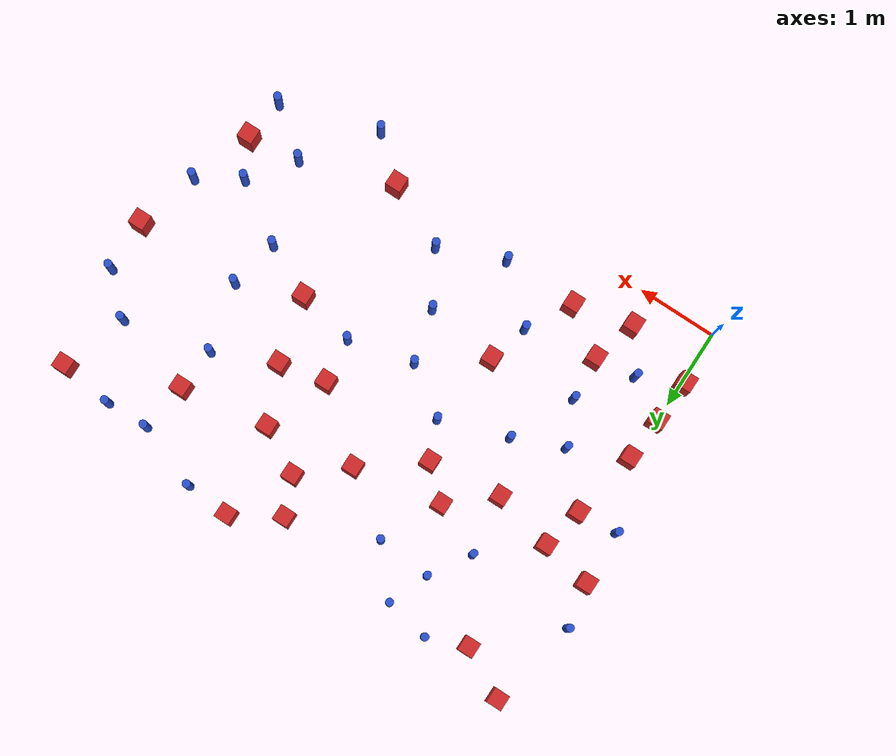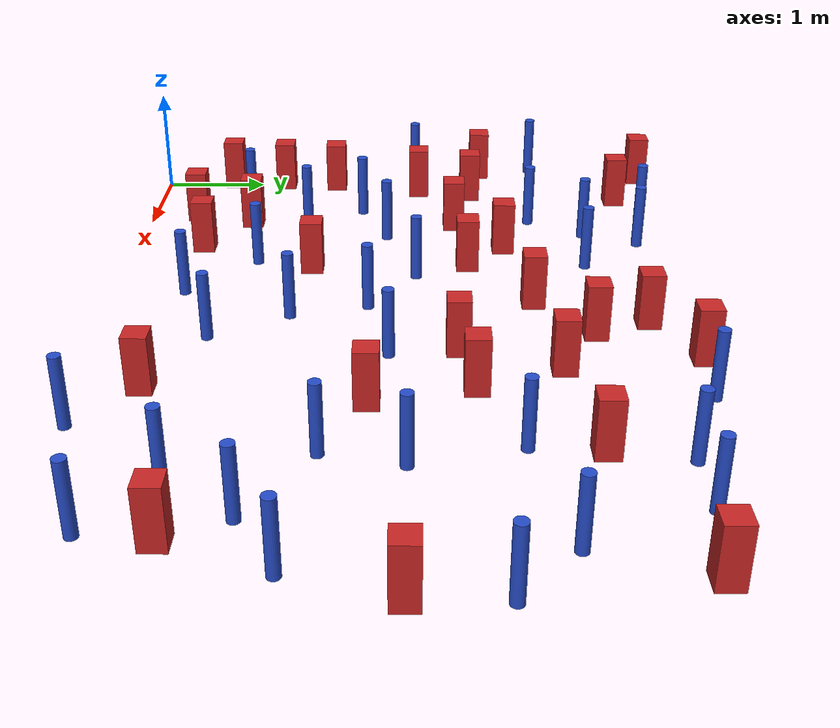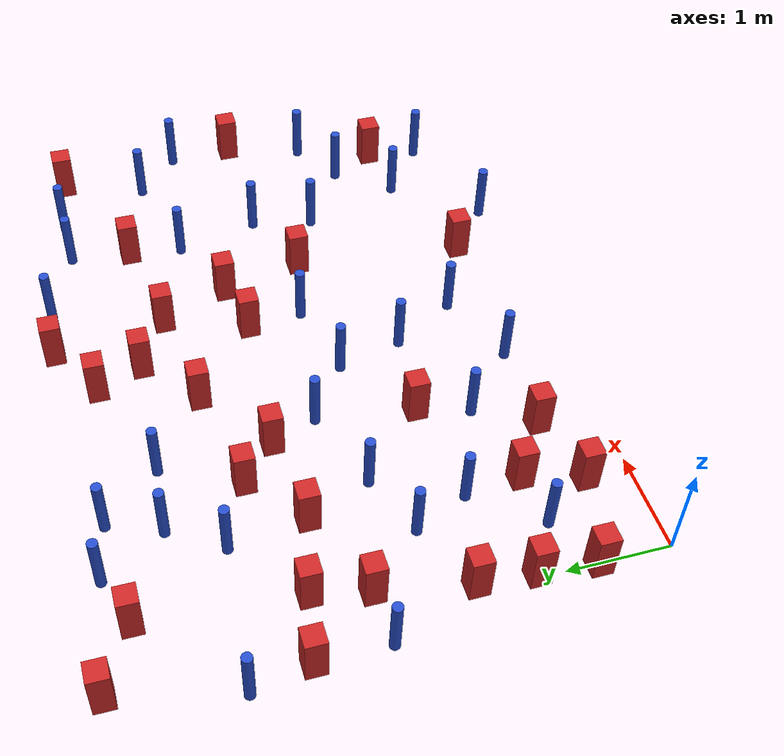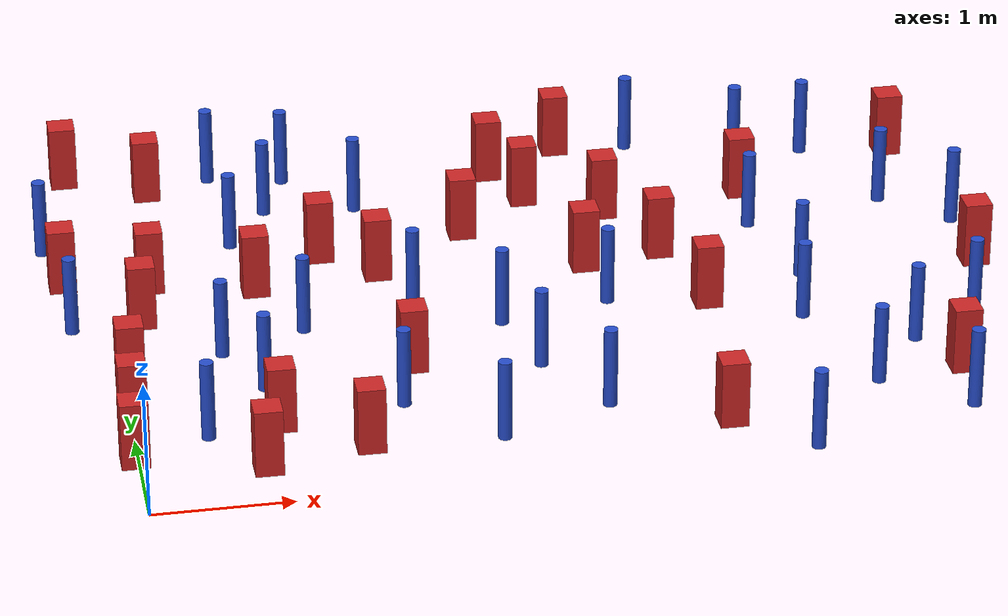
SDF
<sdf version="1.6">
 <model name="dense_7">
  <model name="square_post_obstacle11">
   <static>true</static>
   <pose>2.00786837578 3.1188918921 1.91545236811e-07 -7.35059704564e-06 1.12565212e-07 2.39332434364e-05</pose>
   <link name="link">
    <pose>0 0 0.25 0 -0 0</pose>
    <inertial>
     <mass>100</mass>
     <inertia>
      <ixx>0.166667</ixx>
      <ixy>0</ixy>
      <ixz>0</ixz>
      <iyy>0.166667</iyy>
      <iyz>0</iyz>
      <izz>0.166667</izz>
     </inertia>
    </inertial>
    <collision name="collision"><geometry><box><size>.2 .2 .5</size></box></geometry></collision>
    <visual name="visual">
     <geometry><box><size>.2 .2 .5</size></box></geometry>
     <material>
      <script><name>Gazebo/Red</name><uri>file://media/materials/scripts/gazebo.material</uri></script>
     </material>
    </visual>
   </link>
  </model>
  <model name="square_post_obstacle13">
   <static>true</static>
   <pose>0.330037371292 3.20440158988 1.91545236811e-07 -7.35059704564e-06 1.12565212e-07 2.39332434364e-05</pose>
   <link name="link">
    <pose>0 0 0.25 0 -0 0</pose>
    <inertial>
     <mass>100</mass>
     <inertia>
      <ixx>0.166667</ixx>
      <ixy>0</ixy>
      <ixz>0</ixz>
      <iyy>0.166667</iyy>
      <iyz>0</iyz>
      <izz>0.166667</izz>
     </inertia>
    </inertial>
    <collision name="collision"><geometry><box><size>.2 .2 .5</size></box></geometry></collision>
    <visual name="visual">
     <geometry><box><size>.2 .2 .5</size></box></geometry>
     <material>
      <script><name>Gazebo/Red</name><uri>file://media/materials/scripts/gazebo.material</uri></script>
     </material>
    </visual>
   </link>
  </model>
  <model name="square_post_obstacle17">
   <static>true</static>
   <pose>0.0158178498044 1.2604832385 1.91545236811e-07 -7.35059704564e-06 1.12565212e-07 2.39332434364e-05</pose>
   <link name="link">
    <pose>0 0 0.25 0 -0 0</pose>
    <inertial>
     <mass>100</mass>
     <inertia>
      <ixx>0.166667</ixx>
      <ixy>0</ixy>
      <ixz>0</ixz>
      <iyy>0.166667</iyy>
      <iyz>0</iyz>
      <izz>0.166667</izz>
     </inertia>
    </inertial>
    <collision name="collision"><geometry><box><size>.2 .2 .5</size></box></geometry></collision>
    <visual name="visual">
     <geometry><box><size>.2 .2 .5</size></box></geometry>
     <material>
      <script><name>Gazebo/Red</name><uri>file://media/materials/scripts/gazebo.material</uri></script>
     </material>
    </visual>
   </link>
  </model>
  <model name="pole_obstacle10">
   <static>true</static>
   <pose>0.944333623494 4.88567768252 7.38925637345e-09 -8.471706928e-08 1.24976765086e-08 -1.74513093015e-07</pose>
   <link name="link">
    <pose>0 0 0.3 0 -0 0</pose>
    <inertial>
     <mass>1</mass>
     <inertia><ixx>0.145833</ixx><ixy>0</ixy><ixz>0</ixz><iyy>0.145833</iyy><iyz>0</iyz><izz>0.125</izz></inertia>
    </inertial>
    <collision name="collision">
     <geometry><cylinder><radius>0.05</radius><length>.6</length></cylinder></geometry>
    </collision>
    <visual name="visual">
     <geometry><cylinder><radius>0.05</radius><length>.6</length></cylinder></geometry>
     <material>
      <script><name>Gazebo/Blue</name><uri>file://media/materials/scripts/gazebo.material</uri></script>
     </material>
    </visual>
   </link>
  </model>
  <model name="pole_obstacle13">
   <static>true</static>
   <pose>6.21061196877 1.79302768578 7.38925637345e-09 -8.471706928e-08 1.24976765134e-08 -1.74513093015e-07</pose>
   <link name="link">
    <pose>0 0 0.3 0 -0 0</pose>
    <inertial>
     <mass>1</mass>
     <inertia><ixx>0.145833</ixx><ixy>0</ixy><ixz>0</ixz><iyy>0.145833</iyy><iyz>0</iyz><izz>0.125</izz></inertia>
    </inertial>
    <collision name="collision">
     <geometry><cylinder><radius>0.05</radius><length>.6</length></cylinder></geometry>
    </collision>
    <visual name="visual">
     <geometry><cylinder><radius>0.05</radius><length>.6</length></cylinder></geometry>
     <material>
      <script><name>Gazebo/Blue</name><uri>file://media/materials/scripts/gazebo.material</uri></script>
     </material>
    </visual>
   </link>
  </model>
  <model name="pole_obstacle23">
   <static>true</static>
   <pose>2.79433723792 2.23426225955 7.38925637345e-09 -8.47170692798e-08 1.24976764939e-08 -1.74513093025e-07</pose>
   <link name="link">
    <pose>0 0 0.3 0 -0 0</pose>
    <inertial>
     <mass>1</mass>
     <inertia><ixx>0.145833</ixx><ixy>0</ixy><ixz>0</ixz><iyy>0.145833</iyy><iyz>0</iyz><izz>0.125</izz></inertia>
    </inertial>
    <collision name="collision">
     <geometry><cylinder><radius>0.05</radius><length>.6</length></cylinder></geometry>
    </collision>
    <visual name="visual">
     <geometry><cylinder><radius>0.05</radius><length>.6</length></cylinder></geometry>
     <material>
      <script><name>Gazebo/Blue</name><uri>file://media/materials/scripts/gazebo.material</uri></script>
     </material>
    </visual>
   </link>
  </model>
  <model name="square_post_obstacle37">
   <static>true</static>
   <pose>3.67285831128 4.93986969729 1.91545236811e-07 -7.35059704564e-06 1.12565212e-07 2.39332434364e-05</pose>
   <link name="link">
    <pose>0 0 0.25 0 -0 0</pose>
    <inertial>
     <mass>100</mass>
     <inertia>
      <ixx>0.166667</ixx>
      <ixy>0</ixy>
      <ixz>0</ixz>
      <iyy>0.166667</iyy>
      <iyz>0</iyz>
      <izz>0.166667</izz>
     </inertia>
    </inertial>
    <collision name="collision"><geometry><box><size>.2 .2 .5</size></box></geometry></collision>
    <visual name="visual">
     <geometry><box><size>.2 .2 .5</size></box></geometry>
     <material>
      <script><name>Gazebo/Red</name><uri>file://media/materials/scripts/gazebo.material</uri></script>
     </material>
    </visual>
   </link>
  </model>
  <model name="square_post_obstacle38">
   <static>true</static>
   <pose>2.73106794108 3.6618890365 1.91545236811e-07 -7.35059704564e-06 1.12565212e-07 2.39332434364e-05</pose>
   <link name="link">
    <pose>0 0 0.25 0 -0 0</pose>
    <inertial>
     <mass>100</mass>
     <inertia>
      <ixx>0.166667</ixx>
      <ixy>0</ixy>
      <ixz>0</ixz>
      <iyy>0.166667</iyy>
      <iyz>0</iyz>
      <izz>0.166667</izz>
     </inertia>
    </inertial>
    <collision name="collision"><geometry><box><size>.2 .2 .5</size></box></geometry></collision>
    <visual name="visual">
     <geometry><box><size>.2 .2 .5</size></box></geometry>
     <material>
      <script><name>Gazebo/Red</name><uri>file://media/materials/scripts/gazebo.material</uri></script>
     </material>
    </visual>
   </link>
  </model>
  <model name="square_post_obstacle39">
   <static>true</static>
   <pose>1.59457001784 0.632423302085 1.91545236811e-07 -7.35059704564e-06 1.12565212e-07 2.39332434364e-05</pose>
   <link name="link">
    <pose>0 0 0.25 0 -0 0</pose>
    <inertial>
     <mass>100</mass>
     <inertia>
      <ixx>0.166667</ixx>
      <ixy>0</ixy>
      <ixz>0</ixz>
      <iyy>0.166667</iyy>
      <iyz>0</iyz>
      <izz>0.166667</izz>
     </inertia>
    </inertial>
    <collision name="collision"><geometry><box><size>.2 .2 .5</size></box></geometry></collision>
    <visual name="visual">
     <geometry><box><size>.2 .2 .5</size></box></geometry>
     <material>
      <script><name>Gazebo/Red</name><uri>file://media/materials/scripts/gazebo.material</uri></script>
     </material>
    </visual>
   </link>
  </model>
  <model name="square_post_obstacle42">
   <static>true</static>
   <pose>3.84130354728 3.80793147247 1.91545236811e-07 -7.35059704564e-06 1.12565212e-07 2.39332434364e-05</pose>
   <link name="link">
    <pose>0 0 0.25 0 -0 0</pose>
    <inertial>
     <mass>100</mass>
     <inertia>
      <ixx>0.166667</ixx>
      <ixy>0</ixy>
      <ixz>0</ixz>
      <iyy>0.166667</iyy>
      <iyz>0</iyz>
      <izz>0.166667</izz>
     </inertia>
    </inertial>
    <collision name="collision"><geometry><box><size>.2 .2 .5</size></box></geometry></collision>
    <visual name="visual">
     <geometry><box><size>.2 .2 .5</size></box></geometry>
     <material>
      <script><name>Gazebo/Red</name><uri>file://media/materials/scripts/gazebo.material</uri></script>
     </material>
    </visual>
   </link>
  </model>
  <model name="pole_obstacle47">
   <static>true</static>
   <pose>2.53132989086 0.604674307064 7.38925637345e-09 -8.471706928e-08 1.24976765177e-08 -1.74513093012e-07</pose>
   <link name="link">
    <pose>0 0 0.3 0 -0 0</pose>
    <inertial>
     <mass>1</mass>
     <inertia><ixx>0.145833</ixx><ixy>0</ixy><ixz>0</ixz><iyy>0.145833</iyy><iyz>0</iyz><izz>0.125</izz></inertia>
    </inertial>
    <collision name="collision">
     <geometry><cylinder><radius>0.05</radius><length>.6</length></cylinder></geometry>
    </collision>
    <visual name="visual">
     <geometry><cylinder><radius>0.05</radius><length>.6</length></cylinder></geometry>
     <material>
      <script><name>Gazebo/Blue</name><uri>file://media/materials/scripts/gazebo.material</uri></script>
     </material>
    </visual>
   </link>
  </model>
  <model name="square_post_obstacle50">
   <static>true</static>
   <pose>6.42778259608 2.5835620169 1.91545236811e-07 -7.35059704564e-06 1.12565212e-07 2.39332434364e-05</pose>
   <link name="link">
    <pose>0 0 0.25 0 -0 0</pose>
    <inertial>
     <mass>100</mass>
     <inertia>
      <ixx>0.166667</ixx>
      <ixy>0</ixy>
      <ixz>0</ixz>
      <iyy>0.166667</iyy>
      <iyz>0</iyz>
      <izz>0.166667</izz>
     </inertia>
    </inertial>
    <collision name="collision"><geometry><box><size>.2 .2 .5</size></box></geometry></collision>
    <visual name="visual">
     <geometry><box><size>.2 .2 .5</size></box></geometry>
     <material>
      <script><name>Gazebo/Red</name><uri>file://media/materials/scripts/gazebo.material</uri></script>
     </material>
    </visual>
   </link>
  </model>
  <model name="pole_obstacle51">
   <static>true</static>
   <pose>4.63802981212 0.105509506955 7.38925637345e-09 -8.47170692799e-08 1.24976765066e-08 -1.74513093016e-07</pose>
   <link name="link">
    <pose>0 0 0.3 0 -0 0</pose>
    <inertial>
     <mass>1</mass>
     <inertia><ixx>0.145833</ixx><ixy>0</ixy><ixz>0</ixz><iyy>0.145833</iyy><iyz>0</iyz><izz>0.125</izz></inertia>
    </inertial>
    <collision name="collision">
     <geometry><cylinder><radius>0.05</radius><length>.6</length></cylinder></geometry>
    </collision>
    <visual name="visual">
     <geometry><cylinder><radius>0.05</radius><length>.6</length></cylinder></geometry>
     <material>
      <script><name>Gazebo/Blue</name><uri>file://media/materials/scripts/gazebo.material</uri></script>
     </material>
    </visual>
   </link>
  </model>
  <model name="square_post_obstacle54">
   <static>true</static>
   <pose>4.12608236426 0.55460140565 1.91545236811e-07 -7.35059704564e-06 1.12565212e-07 2.39332434364e-05</pose>
   <link name="link">
    <pose>0 0 0.25 0 -0 0</pose>
    <inertial>
     <mass>100</mass>
     <inertia>
      <ixx>0.166667</ixx>
      <ixy>0</ixy>
      <ixz>0</ixz>
      <iyy>0.166667</iyy>
      <iyz>0</iyz>
      <izz>0.166667</izz>
     </inertia>
    </inertial>
    <collision name="collision"><geometry><box><size>.2 .2 .5</size></box></geometry></collision>
    <visual name="visual">
     <geometry><box><size>.2 .2 .5</size></box></geometry>
     <material>
      <script><name>Gazebo/Red</name><uri>file://media/materials/scripts/gazebo.material</uri></script>
     </material>
    </visual>
   </link>
  </model>
  <model name="square_post_obstacle69">
   <static>true</static>
   <pose>0.863787840658 0.459194700348 1.91545236811e-07 -7.35059704564e-06 1.12565212e-07 2.39332434364e-05</pose>
   <link name="link">
    <pose>0 0 0.25 0 -0 0</pose>
    <inertial>
     <mass>100</mass>
     <inertia>
      <ixx>0.166667</ixx>
      <ixy>0</ixy>
      <ixz>0</ixz>
      <iyy>0.166667</iyy>
      <iyz>0</iyz>
      <izz>0.166667</izz>
     </inertia>
    </inertial>
    <collision name="collision"><geometry><box><size>.2 .2 .5</size></box></geometry></collision>
    <visual name="visual">
     <geometry><box><size>.2 .2 .5</size></box></geometry>
     <material>
      <script><name>Gazebo/Red</name><uri>file://media/materials/scripts/gazebo.material</uri></script>
     </material>
    </visual>
   </link>
  </model>
  <model name="pole_obstacle84">
   <static>true</static>
   <pose>5.97501203008 3.67319659147 7.38925637345e-09 -8.47170692798e-08 1.24976764937e-08 -1.74513093023e-07</pose>
   <link name="link">
    <pose>0 0 0.3 0 -0 0</pose>
    <inertial>
     <mass>1</mass>
     <inertia><ixx>0.145833</ixx><ixy>0</ixy><ixz>0</ixz><iyy>0.145833</iyy><iyz>0</iyz><izz>0.125</izz></inertia>
    </inertial>
    <collision name="collision">
     <geometry><cylinder><radius>0.05</radius><length>.6</length></cylinder></geometry>
    </collision>
    <visual name="visual">
     <geometry><cylinder><radius>0.05</radius><length>.6</length></cylinder></geometry>
     <material>
      <script><name>Gazebo/Blue</name><uri>file://media/materials/scripts/gazebo.material</uri></script>
     </material>
    </visual>
   </link>
  </model>
  <model name="pole_obstacle85">
   <static>true</static>
   <pose>3.612017693 2.42757508268 7.38925637345e-09 -8.47170692798e-08 1.24976764939e-08 -1.74513093025e-07</pose>
   <link name="link">
    <pose>0 0 0.3 0 -0 0</pose>
    <inertial>
     <mass>1</mass>
     <inertia><ixx>0.145833</ixx><ixy>0</ixy><ixz>0</ixz><iyy>0.145833</iyy><iyz>0</iyz><izz>0.125</izz></inertia>
    </inertial>
    <collision name="collision">
     <geometry><cylinder><radius>0.05</radius><length>.6</length></cylinder></geometry>
    </collision>
    <visual name="visual">
     <geometry><cylinder><radius>0.05</radius><length>.6</length></cylinder></geometry>
     <material>
      <script><name>Gazebo/Blue</name><uri>file://media/materials/scripts/gazebo.material</uri></script>
     </material>
    </visual>
   </link>
  </model>
  <model name="pole_obstacle86">
   <static>true</static>
   <pose>4.8983027293 3.43261936632 7.38925637345e-09 -8.47170692798e-08 1.24976764937e-08 -1.74513093023e-07</pose>
   <link name="link">
    <pose>0 0 0.3 0 -0 0</pose>
    <inertial>
     <mass>1</mass>
     <inertia><ixx>0.145833</ixx><ixy>0</ixy><ixz>0</ixz><iyy>0.145833</iyy><iyz>0</iyz><izz>0.125</izz></inertia>
    </inertial>
    <collision name="collision">
     <geometry><cylinder><radius>0.05</radius><length>.6</length></cylinder></geometry>
    </collision>
    <visual name="visual">
     <geometry><cylinder><radius>0.05</radius><length>.6</length></cylinder></geometry>
     <material>
      <script><name>Gazebo/Blue</name><uri>file://media/materials/scripts/gazebo.material</uri></script>
     </material>
    </visual>
   </link>
  </model>
  <model name="square_post_obstacle86">
   <static>true</static>
   <pose>4.32679421276 2.2790116075 1.91545236811e-07 -7.35059704564e-06 1.12565212e-07 2.39332434364e-05</pose>
   <link name="link">
    <pose>0 0 0.25 0 -0 0</pose>
    <inertial>
     <mass>100</mass>
     <inertia>
      <ixx>0.166667</ixx>
      <ixy>0</ixy>
      <ixz>0</ixz>
      <iyy>0.166667</iyy>
      <iyz>0</iyz>
      <izz>0.166667</izz>
     </inertia>
    </inertial>
    <collision name="collision"><geometry><box><size>.2 .2 .5</size></box></geometry></collision>
    <visual name="visual">
     <geometry><box><size>.2 .2 .5</size></box></geometry>
     <material>
      <script><name>Gazebo/Red</name><uri>file://media/materials/scripts/gazebo.material</uri></script>
     </material>
    </visual>
   </link>
  </model>
  <model name="pole_obstacle101">
   <static>true</static>
   <pose>2.96429696837 1.57492852533 7.38925637345e-09 -8.471706928e-08 1.24976765152e-08 -1.74513093012e-07</pose>
   <link name="link">
    <pose>0 0 0.3 0 -0 0</pose>
    <inertial>
     <mass>1</mass>
     <inertia><ixx>0.145833</ixx><ixy>0</ixy><ixz>0</ixz><iyy>0.145833</iyy><iyz>0</iyz><izz>0.125</izz></inertia>
    </inertial>
    <collision name="collision">
     <geometry><cylinder><radius>0.05</radius><length>.6</length></cylinder></geometry>
    </collision>
    <visual name="visual">
     <geometry><cylinder><radius>0.05</radius><length>.6</length></cylinder></geometry>
     <material>
      <script><name>Gazebo/Blue</name><uri>file://media/materials/scripts/gazebo.material</uri></script>
     </material>
    </visual>
   </link>
  </model>
  <model name="square_post_obstacle94">
   <static>true</static>
   <pose>1.08905697369 3.01801143871 1.91545236811e-07 -7.35059704564e-06 1.12565212e-07 2.39332434364e-05</pose>
   <link name="link">
    <pose>0 0 0.25 0 -0 0</pose>
    <inertial>
     <mass>100</mass>
     <inertia>
      <ixx>0.166667</ixx>
      <ixy>0</ixy>
      <ixz>0</ixz>
      <iyy>0.166667</iyy>
      <iyz>0</iyz>
      <izz>0.166667</izz>
     </inertia>
    </inertial>
    <collision name="collision"><geometry><box><size>.2 .2 .5</size></box></geometry></collision>
    <visual name="visual">
     <geometry><box><size>.2 .2 .5</size></box></geometry>
     <material>
      <script><name>Gazebo/Red</name><uri>file://media/materials/scripts/gazebo.material</uri></script>
     </material>
    </visual>
   </link>
  </model>
  <model name="square_post_obstacle98">
   <static>true</static>
   <pose>-0.15522373049 5.02814463486 1.91545236811e-07 -7.35059704564e-06 1.12565212e-07 2.39332434364e-05</pose>
   <link name="link">
    <pose>0 0 0.25 0 -0 0</pose>
    <inertial>
     <mass>100</mass>
     <inertia>
      <ixx>0.166667</ixx>
      <ixy>0</ixy>
      <ixz>0</ixz>
      <iyy>0.166667</iyy>
      <iyz>0</iyz>
      <izz>0.166667</izz>
     </inertia>
    </inertial>
    <collision name="collision"><geometry><box><size>.2 .2 .5</size></box></geometry></collision>
    <visual name="visual">
     <geometry><box><size>.2 .2 .5</size></box></geometry>
     <material>
      <script><name>Gazebo/Red</name><uri>file://media/materials/scripts/gazebo.material</uri></script>
     </material>
    </visual>
   </link>
  </model>
  <model name="square_post_obstacle99">
   <static>true</static>
   <pose>4.13153614042 3.11027207538 1.91545236811e-07 -7.35059704564e-06 1.12565212e-07 2.39332434364e-05</pose>
   <link name="link">
    <pose>0 0 0.25 0 -0 0</pose>
    <inertial>
     <mass>100</mass>
     <inertia>
      <ixx>0.166667</ixx>
      <ixy>0</ixy>
      <ixz>0</ixz>
      <iyy>0.166667</iyy>
      <iyz>0</iyz>
      <izz>0.166667</izz>
     </inertia>
    </inertial>
    <collision name="collision"><geometry><box><size>.2 .2 .5</size></box></geometry></collision>
    <visual name="visual">
     <geometry><box><size>.2 .2 .5</size></box></geometry>
     <material>
      <script><name>Gazebo/Red</name><uri>file://media/materials/scripts/gazebo.material</uri></script>
     </material>
    </visual>
   </link>
  </model>
  <model name="square_post_obstacle112">
   <static>true</static>
   <pose>6.24314671431 4.49891998833 1.91545236811e-07 -7.35059704564e-06 1.12565212e-07 2.39332434364e-05</pose>
   <link name="link">
    <pose>0 0 0.25 0 -0 0</pose>
    <inertial>
     <mass>100</mass>
     <inertia>
      <ixx>0.166667</ixx>
      <ixy>0</ixy>
      <ixz>0</ixz>
      <iyy>0.166667</iyy>
      <iyz>0</iyz>
      <izz>0.166667</izz>
     </inertia>
    </inertial>
    <collision name="collision"><geometry><box><size>.2 .2 .5</size></box></geometry></collision>
    <visual name="visual">
     <geometry><box><size>.2 .2 .5</size></box></geometry>
     <material>
      <script><name>Gazebo/Red</name><uri>file://media/materials/scripts/gazebo.material</uri></script>
     </material>
    </visual>
   </link>
  </model>
  <model name="pole_obstacle122">
   <static>true</static>
   <pose>0.510637550813 0.952614618284 7.38925637345e-09 -8.471706928e-08 1.2497676511e-08 -1.74513093014e-07</pose>
   <link name="link">
    <pose>0 0 0.3 0 -0 0</pose>
    <inertial>
     <mass>1</mass>
     <inertia><ixx>0.145833</ixx><ixy>0</ixy><ixz>0</ixz><iyy>0.145833</iyy><iyz>0</iyz><izz>0.125</izz></inertia>
    </inertial>
    <collision name="collision">
     <geometry><cylinder><radius>0.05</radius><length>.6</length></cylinder></geometry>
    </collision>
    <visual name="visual">
     <geometry><cylinder><radius>0.05</radius><length>.6</length></cylinder></geometry>
     <material>
      <script><name>Gazebo/Blue</name><uri>file://media/materials/scripts/gazebo.material</uri></script>
     </material>
    </visual>
   </link>
  </model>
  <model name="pole_obstacle127">
   <static>true</static>
   <pose>0.981365443327 1.56986857597 7.38925637345e-09 -8.47170692798e-08 1.24976764951e-08 -1.74513093022e-07</pose>
   <link name="link">
    <pose>0 0 0.3 0 -0 0</pose>
    <inertial>
     <mass>1</mass>
     <inertia><ixx>0.145833</ixx><ixy>0</ixy><ixz>0</ixz><iyy>0.145833</iyy><iyz>0</iyz><izz>0.125</izz></inertia>
    </inertial>
    <collision name="collision">
     <geometry><cylinder><radius>0.05</radius><length>.6</length></cylinder></geometry>
    </collision>
    <visual name="visual">
     <geometry><cylinder><radius>0.05</radius><length>.6</length></cylinder></geometry>
     <material>
      <script><name>Gazebo/Blue</name><uri>file://media/materials/scripts/gazebo.material</uri></script>
     </material>
    </visual>
   </link>
  </model>
  <model name="pole_obstacle141">
   <static>true</static>
   <pose>1.30706618312 4.26784318113 7.38925637345e-09 -8.47170692799e-08 1.24976765033e-08 -1.74513093018e-07</pose>
   <link name="link">
    <pose>0 0 0.3 0 -0 0</pose>
    <inertial>
     <mass>1</mass>
     <inertia><ixx>0.145833</ixx><ixy>0</ixy><ixz>0</ixz><iyy>0.145833</iyy><iyz>0</iyz><izz>0.125</izz></inertia>
    </inertial>
    <collision name="collision">
     <geometry><cylinder><radius>0.05</radius><length>.6</length></cylinder></geometry>
    </collision>
    <visual name="visual">
     <geometry><cylinder><radius>0.05</radius><length>.6</length></cylinder></geometry>
     <material>
      <script><name>Gazebo/Blue</name><uri>file://media/materials/scripts/gazebo.material</uri></script>
     </material>
    </visual>
   </link>
  </model>
  <model name="square_post_obstacle127">
   <static>true</static>
   <pose>3.27967101463 4.12862583577 1.91545236811e-07 -7.35059704564e-06 1.12565212e-07 2.39332434364e-05</pose>
   <link name="link">
    <pose>0 0 0.25 0 -0 0</pose>
    <inertial>
     <mass>100</mass>
     <inertia>
      <ixx>0.166667</ixx>
      <ixy>0</ixy>
      <ixz>0</ixz>
      <iyy>0.166667</iyy>
      <iyz>0</iyz>
      <izz>0.166667</izz>
     </inertia>
    </inertial>
    <collision name="collision"><geometry><box><size>.2 .2 .5</size></box></geometry></collision>
    <visual name="visual">
     <geometry><box><size>.2 .2 .5</size></box></geometry>
     <material>
      <script><name>Gazebo/Red</name><uri>file://media/materials/scripts/gazebo.material</uri></script>
     </material>
    </visual>
   </link>
  </model>
  <model name="square_post_obstacle130">
   <static>true</static>
   <pose>3.08511404522 4.59632683058 1.91545236811e-07 -7.35059704564e-06 1.12565212e-07 2.39332434364e-05</pose>
   <link name="link">
    <pose>0 0 0.25 0 -0 0</pose>
    <inertial>
     <mass>100</mass>
     <inertia>
      <ixx>0.166667</ixx>
      <ixy>0</ixy>
      <ixz>0</ixz>
      <iyy>0.166667</iyy>
      <iyz>0</iyz>
      <izz>0.166667</izz>
     </inertia>
    </inertial>
    <collision name="collision"><geometry><box><size>.2 .2 .5</size></box></geometry></collision>
    <visual name="visual">
     <geometry><box><size>.2 .2 .5</size></box></geometry>
     <material>
      <script><name>Gazebo/Red</name><uri>file://media/materials/scripts/gazebo.material</uri></script>
     </material>
    </visual>
   </link>
  </model>
  <model name="square_post_obstacle132">
   <static>true</static>
   <pose>1.02538336855 1.02652457656 1.91545236811e-07 -7.35059704564e-06 1.12565212e-07 2.39332434364e-05</pose>
   <link name="link">
    <pose>0 0 0.25 0 -0 0</pose>
    <inertial>
     <mass>100</mass>
     <inertia>
      <ixx>0.166667</ixx>
      <ixy>0</ixy>
      <ixz>0</ixz>
      <iyy>0.166667</iyy>
      <iyz>0</iyz>
      <izz>0.166667</izz>
     </inertia>
    </inertial>
    <collision name="collision"><geometry><box><size>.2 .2 .5</size></box></geometry></collision>
    <visual name="visual">
     <geometry><box><size>.2 .2 .5</size></box></geometry>
     <material>
      <script><name>Gazebo/Red</name><uri>file://media/materials/scripts/gazebo.material</uri></script>
     </material>
    </visual>
   </link>
  </model>
  <model name="pole_obstacle145">
   <static>true</static>
   <pose>-0.411148315705 3.88852994668 7.38925637345e-09 -8.471706928e-08 1.24976765084e-08 -1.74513093017e-07</pose>
   <link name="link">
    <pose>0 0 0.3 0 -0 0</pose>
    <inertial>
     <mass>1</mass>
     <inertia><ixx>0.145833</ixx><ixy>0</ixy><ixz>0</ixz><iyy>0.145833</iyy><iyz>0</iyz><izz>0.125</izz></inertia>
    </inertial>
    <collision name="collision">
     <geometry><cylinder><radius>0.05</radius><length>.6</length></cylinder></geometry>
    </collision>
    <visual name="visual">
     <geometry><cylinder><radius>0.05</radius><length>.6</length></cylinder></geometry>
     <material>
      <script><name>Gazebo/Blue</name><uri>file://media/materials/scripts/gazebo.material</uri></script>
     </material>
    </visual>
   </link>
  </model>
  <model name="pole_obstacle148">
   <static>true</static>
   <pose>5.57990338509 4.59775783071 7.38925637345e-09 -8.47170692796e-08 1.24976764786e-08 -1.74513093032e-07</pose>
   <link name="link">
    <pose>0 0 0.3 0 -0 0</pose>
    <inertial>
     <mass>1</mass>
     <inertia><ixx>0.145833</ixx><ixy>0</ixy><ixz>0</ixz><iyy>0.145833</iyy><iyz>0</iyz><izz>0.125</izz></inertia>
    </inertial>
    <collision name="collision">
     <geometry><cylinder><radius>0.05</radius><length>.6</length></cylinder></geometry>
    </collision>
    <visual name="visual">
     <geometry><cylinder><radius>0.05</radius><length>.6</length></cylinder></geometry>
     <material>
      <script><name>Gazebo/Blue</name><uri>file://media/materials/scripts/gazebo.material</uri></script>
     </material>
    </visual>
   </link>
  </model>
  <model name="square_post_obstacle137">
   <static>true</static>
   <pose>4.94383989922 3.97546784478 1.91545236811e-07 -7.35059704564e-06 1.12565212e-07 2.39332434364e-05</pose>
   <link name="link">
    <pose>0 0 0.25 0 -0 0</pose>
    <inertial>
     <mass>100</mass>
     <inertia>
      <ixx>0.166667</ixx>
      <ixy>0</ixy>
      <ixz>0</ixz>
      <iyy>0.166667</iyy>
      <iyz>0</iyz>
      <izz>0.166667</izz>
     </inertia>
    </inertial>
    <collision name="collision"><geometry><box><size>.2 .2 .5</size></box></geometry></collision>
    <visual name="visual">
     <geometry><box><size>.2 .2 .5</size></box></geometry>
     <material>
      <script><name>Gazebo/Red</name><uri>file://media/materials/scripts/gazebo.material</uri></script>
     </material>
    </visual>
   </link>
  </model>
  <model name="square_post_obstacle141">
   <static>true</static>
   <pose>2.05513826678 1.69724402007 1.91545236811e-07 -7.35059704564e-06 1.12565212e-07 2.39332434364e-05</pose>
   <link name="link">
    <pose>0 0 0.25 0 -0 0</pose>
    <inertial>
     <mass>100</mass>
     <inertia>
      <ixx>0.166667</ixx>
      <ixy>0</ixy>
      <ixz>0</ixz>
      <iyy>0.166667</iyy>
      <iyz>0</iyz>
      <izz>0.166667</izz>
     </inertia>
    </inertial>
    <collision name="collision"><geometry><box><size>.2 .2 .5</size></box></geometry></collision>
    <visual name="visual">
     <geometry><box><size>.2 .2 .5</size></box></geometry>
     <material>
      <script><name>Gazebo/Red</name><uri>file://media/materials/scripts/gazebo.material</uri></script>
     </material>
    </visual>
   </link>
  </model>
  <model name="pole_obstacle155">
   <static>true</static>
   <pose>0.990394251256 3.76680170456 7.38925637345e-09 -8.47170692799e-08 1.24976765046e-08 -1.74513093018e-07</pose>
   <link name="link">
    <pose>0 0 0.3 0 -0 0</pose>
    <inertial>
     <mass>1</mass>
     <inertia><ixx>0.145833</ixx><ixy>0</ixy><ixz>0</ixz><iyy>0.145833</iyy><iyz>0</iyz><izz>0.125</izz></inertia>
    </inertial>
    <collision name="collision">
     <geometry><cylinder><radius>0.05</radius><length>.6</length></cylinder></geometry>
    </collision>
    <visual name="visual">
     <geometry><cylinder><radius>0.05</radius><length>.6</length></cylinder></geometry>
     <material>
      <script><name>Gazebo/Blue</name><uri>file://media/materials/scripts/gazebo.material</uri></script>
     </material>
    </visual>
   </link>
  </model>
  <model name="square_post_obstacle149">
   <static>true</static>
   <pose>0.052141131458 1.80300591665 1.91545236811e-07 -7.35059704564e-06 1.12565212e-07 2.39332434364e-05</pose>
   <link name="link">
    <pose>0 0 0.25 0 -0 0</pose>
    <inertial>
     <mass>100</mass>
     <inertia>
      <ixx>0.166667</ixx>
      <ixy>0</ixy>
      <ixz>0</ixz>
      <iyy>0.166667</iyy>
      <iyz>0</iyz>
      <izz>0.166667</izz>
     </inertia>
    </inertial>
    <collision name="collision"><geometry><box><size>.2 .2 .5</size></box></geometry></collision>
    <visual name="visual">
     <geometry><box><size>.2 .2 .5</size></box></geometry>
     <material>
      <script><name>Gazebo/Red</name><uri>file://media/materials/scripts/gazebo.material</uri></script>
     </material>
    </visual>
   </link>
  </model>
  <model name="pole_obstacle158">
   <static>true</static>
   <pose>1.91401387369 1.17902443918 7.38925637345e-09 -8.471706928e-08 1.24976765079e-08 -1.74513093017e-07</pose>
   <link name="link">
    <pose>0 0 0.3 0 -0 0</pose>
    <inertial>
     <mass>1</mass>
     <inertia><ixx>0.145833</ixx><ixy>0</ixy><ixz>0</ixz><iyy>0.145833</iyy><iyz>0</iyz><izz>0.125</izz></inertia>
    </inertial>
    <collision name="collision">
     <geometry><cylinder><radius>0.05</radius><length>.6</length></cylinder></geometry>
    </collision>
    <visual name="visual">
     <geometry><cylinder><radius>0.05</radius><length>.6</length></cylinder></geometry>
     <material>
      <script><name>Gazebo/Blue</name><uri>file://media/materials/scripts/gazebo.material</uri></script>
     </material>
    </visual>
   </link>
  </model>
  <model name="pole_obstacle159">
   <static>true</static>
   <pose>-0.290497377963 2.63713323006 7.38925637345e-09 -8.471706928e-08 1.24976765139e-08 -1.74513093014e-07</pose>
   <link name="link">
    <pose>0 0 0.3 0 -0 0</pose>
    <inertial>
     <mass>1</mass>
     <inertia><ixx>0.145833</ixx><ixy>0</ixy><ixz>0</ixz><iyy>0.145833</iyy><iyz>0</iyz><izz>0.125</izz></inertia>
    </inertial>
    <collision name="collision">
     <geometry><cylinder><radius>0.05</radius><length>.6</length></cylinder></geometry>
    </collision>
    <visual name="visual">
     <geometry><cylinder><radius>0.05</radius><length>.6</length></cylinder></geometry>
     <material>
      <script><name>Gazebo/Blue</name><uri>file://media/materials/scripts/gazebo.material</uri></script>
     </material>
    </visual>
   </link>
  </model>
  <model name="square_post_obstacle155">
   <static>true</static>
   <pose>-0.3033704911 3.33153540826 1.91545236811e-07 -7.35059704564e-06 1.12565212e-07 2.39332434364e-05</pose>
   <link name="link">
    <pose>0 0 0.25 0 -0 0</pose>
    <inertial>
     <mass>100</mass>
     <inertia>
      <ixx>0.166667</ixx>
      <ixy>0</ixy>
      <ixz>0</ixz>
      <iyy>0.166667</iyy>
      <iyz>0</iyz>
      <izz>0.166667</izz>
     </inertia>
    </inertial>
    <collision name="collision"><geometry><box><size>.2 .2 .5</size></box></geometry></collision>
    <visual name="visual">
     <geometry><box><size>.2 .2 .5</size></box></geometry>
     <material>
      <script><name>Gazebo/Red</name><uri>file://media/materials/scripts/gazebo.material</uri></script>
     </material>
    </visual>
   </link>
  </model>
  <model name="pole_obstacle166">
   <static>true</static>
   <pose>5.10377740959 2.58639645631 7.38925637345e-09 -8.47170692798e-08 1.24976764937e-08 -1.74513093023e-07</pose>
   <link name="link">
    <pose>0 0 0.3 0 -0 0</pose>
    <inertial>
     <mass>1</mass>
     <inertia><ixx>0.145833</ixx><ixy>0</ixy><ixz>0</ixz><iyy>0.145833</iyy><iyz>0</iyz><izz>0.125</izz></inertia>
    </inertial>
    <collision name="collision">
     <geometry><cylinder><radius>0.05</radius><length>.6</length></cylinder></geometry>
    </collision>
    <visual name="visual">
     <geometry><cylinder><radius>0.05</radius><length>.6</length></cylinder></geometry>
     <material>
      <script><name>Gazebo/Blue</name><uri>file://media/materials/scripts/gazebo.material</uri></script>
     </material>
    </visual>
   </link>
  </model>
  <model name="pole_obstacle173">
   <static>true</static>
   <pose>4.23784137271 4.90005820384 7.38925637345e-09 -8.47170692796e-08 1.24976764786e-08 -1.74513093032e-07</pose>
   <link name="link">
    <pose>0 0 0.3 0 -0 0</pose>
    <inertial>
     <mass>1</mass>
     <inertia><ixx>0.145833</ixx><ixy>0</ixy><ixz>0</ixz><iyy>0.145833</iyy><iyz>0</iyz><izz>0.125</izz></inertia>
    </inertial>
    <collision name="collision">
     <geometry><cylinder><radius>0.05</radius><length>.6</length></cylinder></geometry>
    </collision>
    <visual name="visual">
     <geometry><cylinder><radius>0.05</radius><length>.6</length></cylinder></geometry>
     <material>
      <script><name>Gazebo/Blue</name><uri>file://media/materials/scripts/gazebo.material</uri></script>
     </material>
    </visual>
   </link>
  </model>
  <model name="square_post_obstacle183">
   <static>true</static>
   <pose>3.54490060502 2.98982771521 1.91545236811e-07 -7.35059704564e-06 1.12565212e-07 2.39332434364e-05</pose>
   <link name="link">
    <pose>0 0 0.25 0 -0 0</pose>
    <inertial>
     <mass>100</mass>
     <inertia>
      <ixx>0.166667</ixx>
      <ixy>0</ixy>
      <ixz>0</ixz>
      <iyy>0.166667</iyy>
      <iyz>0</iyz>
      <izz>0.166667</izz>
     </inertia>
    </inertial>
    <collision name="collision"><geometry><box><size>.2 .2 .5</size></box></geometry></collision>
    <visual name="visual">
     <geometry><box><size>.2 .2 .5</size></box></geometry>
     <material>
      <script><name>Gazebo/Red</name><uri>file://media/materials/scripts/gazebo.material</uri></script>
     </material>
    </visual>
   </link>
  </model>
  <model name="pole_obstacle196">
   <static>true</static>
   <pose>5.85306698518 0.479716838489 7.38925637345e-09 -8.47170692799e-08 1.24976765124e-08 -1.74513093015e-07</pose>
   <link name="link">
    <pose>0 0 0.3 0 -0 0</pose>
    <inertial>
     <mass>1</mass>
     <inertia><ixx>0.145833</ixx><ixy>0</ixy><ixz>0</ixz><iyy>0.145833</iyy><iyz>0</iyz><izz>0.125</izz></inertia>
    </inertial>
    <collision name="collision">
     <geometry><cylinder><radius>0.05</radius><length>.6</length></cylinder></geometry>
    </collision>
    <visual name="visual">
     <geometry><cylinder><radius>0.05</radius><length>.6</length></cylinder></geometry>
     <material>
      <script><name>Gazebo/Blue</name><uri>file://media/materials/scripts/gazebo.material</uri></script>
     </material>
    </visual>
   </link>
  </model>
  <model name="pole_obstacle197">
   <static>true</static>
   <pose>1.36310422319 2.36747915203 7.38925637345e-09 -8.47170692799e-08 1.24976765053e-08 -1.74513093017e-07</pose>
   <link name="link">
    <pose>0 0 0.3 0 -0 0</pose>
    <inertial>
     <mass>1</mass>
     <inertia><ixx>0.145833</ixx><ixy>0</ixy><ixz>0</ixz><iyy>0.145833</iyy><iyz>0</iyz><izz>0.125</izz></inertia>
    </inertial>
    <collision name="collision">
     <geometry><cylinder><radius>0.05</radius><length>.6</length></cylinder></geometry>
    </collision>
    <visual name="visual">
     <geometry><cylinder><radius>0.05</radius><length>.6</length></cylinder></geometry>
     <material>
      <script><name>Gazebo/Blue</name><uri>file://media/materials/scripts/gazebo.material</uri></script>
     </material>
    </visual>
   </link>
  </model>
  <model name="pole_obstacle198">
   <static>true</static>
   <pose>4.97186563178 1.95942526173 7.38925637345e-09 -8.471706928e-08 1.24976765177e-08 -1.74513093012e-07</pose>
   <link name="link">
    <pose>0 0 0.3 0 -0 0</pose>
    <inertial>
     <mass>1</mass>
     <inertia><ixx>0.145833</ixx><ixy>0</ixy><ixz>0</ixz><iyy>0.145833</iyy><iyz>0</iyz><izz>0.125</izz></inertia>
    </inertial>
    <collision name="collision">
     <geometry><cylinder><radius>0.05</radius><length>.6</length></cylinder></geometry>
    </collision>
    <visual name="visual">
     <geometry><cylinder><radius>0.05</radius><length>.6</length></cylinder></geometry>
     <material>
      <script><name>Gazebo/Blue</name><uri>file://media/materials/scripts/gazebo.material</uri></script>
     </material>
    </visual>
   </link>
  </model>
  <model name="square_post_obstacle191">
   <static>true</static>
   <pose>5.91698956387 1.02314880992 1.91545236811e-07 -7.35059704564e-06 1.12565212e-07 2.39332434364e-05</pose>
   <link name="link">
    <pose>0 0 0.25 0 -0 0</pose>
    <inertial>
     <mass>100</mass>
     <inertia>
      <ixx>0.166667</ixx>
      <ixy>0</ixy>
      <ixz>0</ixz>
      <iyy>0.166667</iyy>
      <iyz>0</iyz>
      <izz>0.166667</izz>
     </inertia>
    </inertial>
    <collision name="collision"><geometry><box><size>.2 .2 .5</size></box></geometry></collision>
    <visual name="visual">
     <geometry><box><size>.2 .2 .5</size></box></geometry>
     <material>
      <script><name>Gazebo/Red</name><uri>file://media/materials/scripts/gazebo.material</uri></script>
     </material>
    </visual>
   </link>
  </model>
  <model name="square_post_obstacle194">
   <static>true</static>
   <pose>0.219517880975 2.67488136091 1.91545236811e-07 -7.35059704564e-06 1.12565212e-07 2.39332434364e-05</pose>
   <link name="link">
    <pose>0 0 0.25 0 -0 0</pose>
    <inertial>
     <mass>100</mass>
     <inertia>
      <ixx>0.166667</ixx>
      <ixy>0</ixy>
      <ixz>0</ixz>
      <iyy>0.166667</iyy>
      <iyz>0</iyz>
      <izz>0.166667</izz>
     </inertia>
    </inertial>
    <collision name="collision"><geometry><box><size>.2 .2 .5</size></box></geometry></collision>
    <visual name="visual">
     <geometry><box><size>.2 .2 .5</size></box></geometry>
     <material>
      <script><name>Gazebo/Red</name><uri>file://media/materials/scripts/gazebo.material</uri></script>
     </material>
    </visual>
   </link>
  </model>
  <model name="square_post_obstacle201">
   <static>true</static>
   <pose>0.452163953887 4.70010150673 1.91545236811e-07 -7.35059704564e-06 1.12565212e-07 2.39332434364e-05</pose>
   <link name="link">
    <pose>0 0 0.25 0 -0 0</pose>
    <inertial>
     <mass>100</mass>
     <inertia>
      <ixx>0.166667</ixx>
      <ixy>0</ixy>
      <ixz>0</ixz>
      <iyy>0.166667</iyy>
      <iyz>0</iyz>
      <izz>0.166667</izz>
     </inertia>
    </inertial>
    <collision name="collision"><geometry><box><size>.2 .2 .5</size></box></geometry></collision>
    <visual name="visual">
     <geometry><box><size>.2 .2 .5</size></box></geometry>
     <material>
      <script><name>Gazebo/Red</name><uri>file://media/materials/scripts/gazebo.material</uri></script>
     </material>
    </visual>
   </link>
  </model>
  <model name="pole_obstacle207">
   <static>true</static>
   <pose>6.43248356527 3.23635338219 7.38925637345e-09 -8.47170692798e-08 1.24976764937e-08 -1.74513093023e-07</pose>
   <link name="link">
    <pose>0 0 0.3 0 -0 0</pose>
    <inertial>
     <mass>1</mass>
     <inertia><ixx>0.145833</ixx><ixy>0</ixy><ixz>0</ixz><iyy>0.145833</iyy><iyz>0</iyz><izz>0.125</izz></inertia>
    </inertial>
    <collision name="collision">
     <geometry><cylinder><radius>0.05</radius><length>.6</length></cylinder></geometry>
    </collision>
    <visual name="visual">
     <geometry><cylinder><radius>0.05</radius><length>.6</length></cylinder></geometry>
     <material>
      <script><name>Gazebo/Blue</name><uri>file://media/materials/scripts/gazebo.material</uri></script>
     </material>
    </visual>
   </link>
  </model>
  <model name="pole_obstacle223">
   <static>true</static>
   <pose>3.33542205129 0.927390732419 7.38925637345e-09 -8.471706928e-08 1.24976765177e-08 -1.74513093012e-07</pose>
   <link name="link">
    <pose>0 0 0.3 0 -0 0</pose>
    <inertial>
     <mass>1</mass>
     <inertia><ixx>0.145833</ixx><ixy>0</ixy><ixz>0</ixz><iyy>0.145833</iyy><iyz>0</iyz><izz>0.125</izz></inertia>
    </inertial>
    <collision name="collision">
     <geometry><cylinder><radius>0.05</radius><length>.6</length></cylinder></geometry>
    </collision>
    <visual name="visual">
     <geometry><cylinder><radius>0.05</radius><length>.6</length></cylinder></geometry>
     <material>
      <script><name>Gazebo/Blue</name><uri>file://media/materials/scripts/gazebo.material</uri></script>
     </material>
    </visual>
   </link>
  </model>
  <model name="square_post_obstacle206">
   <static>true</static>
   <pose>1.62541297593 3.47069707608 1.91545236811e-07 -7.35059704564e-06 1.12565212e-07 2.39332434364e-05</pose>
   <link name="link">
    <pose>0 0 0.25 0 -0 0</pose>
    <inertial>
     <mass>100</mass>
     <inertia>
      <ixx>0.166667</ixx>
      <ixy>0</ixy>
      <ixz>0</ixz>
      <iyy>0.166667</iyy>
      <iyz>0</iyz>
      <izz>0.166667</izz>
     </inertia>
    </inertial>
    <collision name="collision"><geometry><box><size>.2 .2 .5</size></box></geometry></collision>
    <visual name="visual">
     <geometry><box><size>.2 .2 .5</size></box></geometry>
     <material>
      <script><name>Gazebo/Red</name><uri>file://media/materials/scripts/gazebo.material</uri></script>
     </material>
    </visual>
   </link>
  </model>
  <model name="square_post_obstacle210">
   <static>true</static>
   <pose>-0.0246133320255 0.708326956 1.91545236811e-07 -7.35059704564e-06 1.12565212e-07 2.39332434364e-05</pose>
   <link name="link">
    <pose>0 0 0.25 0 -0 0</pose>
    <inertial>
     <mass>100</mass>
     <inertia>
      <ixx>0.166667</ixx>
      <ixy>0</ixy>
      <ixz>0</ixz>
      <iyy>0.166667</iyy>
      <iyz>0</iyz>
      <izz>0.166667</izz>
     </inertia>
    </inertial>
    <collision name="collision"><geometry><box><size>.2 .2 .5</size></box></geometry></collision>
    <visual name="visual">
     <geometry><box><size>.2 .2 .5</size></box></geometry>
     <material>
      <script><name>Gazebo/Red</name><uri>file://media/materials/scripts/gazebo.material</uri></script>
     </material>
    </visual>
   </link>
  </model>
  <model name="pole_obstacle225">
   <static>true</static>
   <pose>5.27825000957 0.930017020781 7.38925637345e-09 -8.47170692799e-08 1.24976765005e-08 -1.7451309302e-07</pose>
   <link name="link">
    <pose>0 0 0.3 0 -0 0</pose>
    <inertial>
     <mass>1</mass>
     <inertia><ixx>0.145833</ixx><ixy>0</ixy><ixz>0</ixz><iyy>0.145833</iyy><iyz>0</iyz><izz>0.125</izz></inertia>
    </inertial>
    <collision name="collision">
     <geometry><cylinder><radius>0.05</radius><length>.6</length></cylinder></geometry>
    </collision>
    <visual name="visual">
     <geometry><cylinder><radius>0.05</radius><length>.6</length></cylinder></geometry>
     <material>
      <script><name>Gazebo/Blue</name><uri>file://media/materials/scripts/gazebo.material</uri></script>
     </material>
    </visual>
   </link>
  </model>
  <model name="pole_obstacle226">
   <static>true</static>
   <pose>1.99225000957 4.20967002078 7.38925637345e-09 -8.471706928e-08 1.24976765044e-08 -1.74513093018e-07</pose>
   <link name="link">
    <pose>0 0 0.3 0 -0 0</pose>
    <inertial>
     <mass>1</mass>
     <inertia><ixx>0.145833</ixx><ixy>0</ixy><ixz>0</ixz><iyy>0.145833</iyy><iyz>0</iyz><izz>0.125</izz></inertia>
    </inertial>
    <collision name="collision">
     <geometry><cylinder><radius>0.05</radius><length>.6</length></cylinder></geometry>
    </collision>
    <visual name="visual">
     <geometry><cylinder><radius>0.05</radius><length>.6</length></cylinder></geometry>
     <material>
      <script><name>Gazebo/Blue</name><uri>file://media/materials/scripts/gazebo.material</uri></script>
     </material>
    </visual>
   </link>
  </model>
  <model name="pole_obstacle241">
   <static>true</static>
   <pose>1.50694000957 4.77040002078 7.38925637345e-09 -8.47170692799e-08 1.24976765052e-08 -1.74513093018e-07</pose>
   <link name="link">
    <pose>0 0 0.3 0 -0 0</pose>
    <inertial>
     <mass>1</mass>
     <inertia><ixx>0.145833</ixx><ixy>0</ixy><ixz>0</ixz><iyy>0.145833</iyy><iyz>0</iyz><izz>0.125</izz></inertia>
    </inertial>
    <collision name="collision">
     <geometry><cylinder><radius>0.05</radius><length>.6</length></cylinder></geometry>
    </collision>
    <visual name="visual">
     <geometry><cylinder><radius>0.05</radius><length>.6</length></cylinder></geometry>
     <material>
      <script><name>Gazebo/Blue</name><uri>file://media/materials/scripts/gazebo.material</uri></script>
     </material>
    </visual>
   </link>
  </model>
  <model name="pole_obstacle244">
   <static>true</static>
   <pose>5.68843000957 1.47864002078 7.38925637345e-09 -8.471706928e-08 1.24976765134e-08 -1.74513093015e-07</pose>
   <link name="link">
    <pose>0 0 0.3 0 -0 0</pose>
    <inertial>
     <mass>1</mass>
     <inertia><ixx>0.145833</ixx><ixy>0</ixy><ixz>0</ixz><iyy>0.145833</iyy><iyz>0</iyz><izz>0.125</izz></inertia>
    </inertial>
    <collision name="collision">
     <geometry><cylinder><radius>0.05</radius><length>.6</length></cylinder></geometry>
    </collision>
    <visual name="visual">
     <geometry><cylinder><radius>0.05</radius><length>.6</length></cylinder></geometry>
     <material>
      <script><name>Gazebo/Blue</name><uri>file://media/materials/scripts/gazebo.material</uri></script>
     </material>
    </visual>
   </link>
  </model>
  <model name="pole_obstacle252">
   <static>true</static>
   <pose>2.20603000957 2.64988002078 7.38925637345e-09 -8.47170692794e-08 1.24976764549e-08 -1.74513093034e-07</pose>
   <link name="link">
    <pose>0 0 0.3 0 -0 0</pose>
    <inertial>
     <mass>1</mass>
     <inertia><ixx>0.145833</ixx><ixy>0</ixy><ixz>0</ixz><iyy>0.145833</iyy><iyz>0</iyz><izz>0.125</izz></inertia>
    </inertial>
    <collision name="collision">
     <geometry><cylinder><radius>0.05</radius><length>.6</length></cylinder></geometry>
    </collision>
    <visual name="visual">
     <geometry><cylinder><radius>0.05</radius><length>.6</length></cylinder></geometry>
     <material>
      <script><name>Gazebo/Blue</name><uri>file://media/materials/scripts/gazebo.material</uri></script>
     </material>
    </visual>
   </link>
  </model>
  <model name="pole_obstacle255">
   <static>true</static>
   <pose>5.04406000957 4.59051002078 7.38925637345e-09 -8.47170692796e-08 1.24976764786e-08 -1.74513093032e-07</pose>
   <link name="link">
    <pose>0 0 0.3 0 -0 0</pose>
    <inertial>
     <mass>1</mass>
     <inertia><ixx>0.145833</ixx><ixy>0</ixy><ixz>0</ixz><iyy>0.145833</iyy><iyz>0</iyz><izz>0.125</izz></inertia>
    </inertial>
    <collision name="collision">
     <geometry><cylinder><radius>0.05</radius><length>.6</length></cylinder></geometry>
    </collision>
    <visual name="visual">
     <geometry><cylinder><radius>0.05</radius><length>.6</length></cylinder></geometry>
     <material>
      <script><name>Gazebo/Blue</name><uri>file://media/materials/scripts/gazebo.material</uri></script>
     </material>
    </visual>
   </link>
  </model>
  <model name="pole_obstacle257">
   <static>true</static>
   <pose>0.740468009575 2.10939002078 7.38925637345e-09 -8.47170692793e-08 1.24976764476e-08 -1.74513093037e-07</pose>
   <link name="link">
    <pose>0 0 0.3 0 -0 0</pose>
    <inertial>
     <mass>1</mass>
     <inertia><ixx>0.145833</ixx><ixy>0</ixy><ixz>0</ixz><iyy>0.145833</iyy><iyz>0</iyz><izz>0.125</izz></inertia>
    </inertial>
    <collision name="collision">
     <geometry><cylinder><radius>0.05</radius><length>.6</length></cylinder></geometry>
    </collision>
    <visual name="visual">
     <geometry><cylinder><radius>0.05</radius><length>.6</length></cylinder></geometry>
     <material>
      <script><name>Gazebo/Blue</name><uri>file://media/materials/scripts/gazebo.material</uri></script>
     </material>
    </visual>
   </link>
  </model>
 </model>
</sdf>
